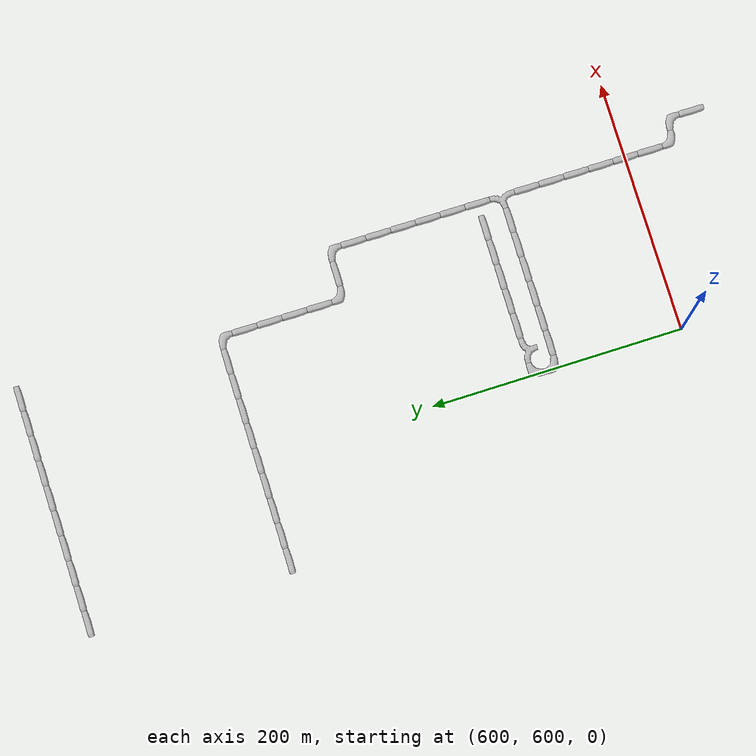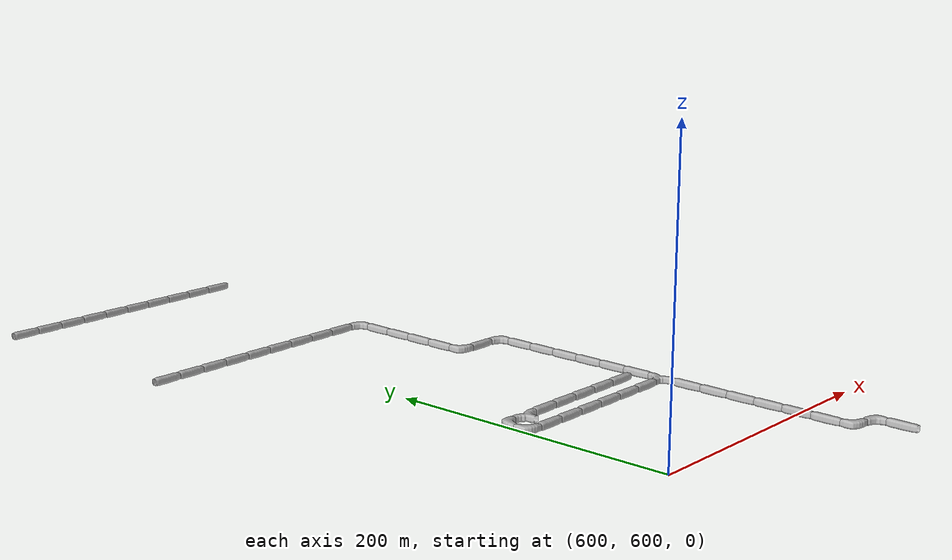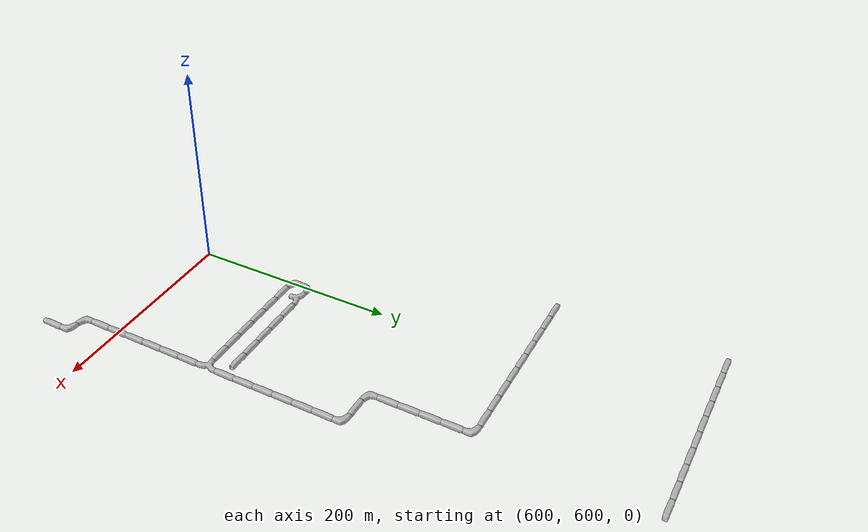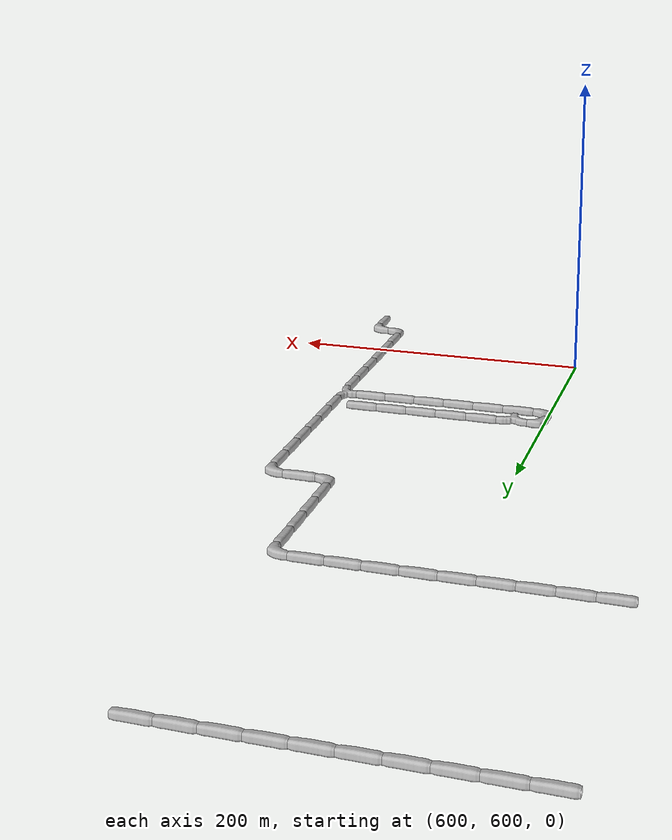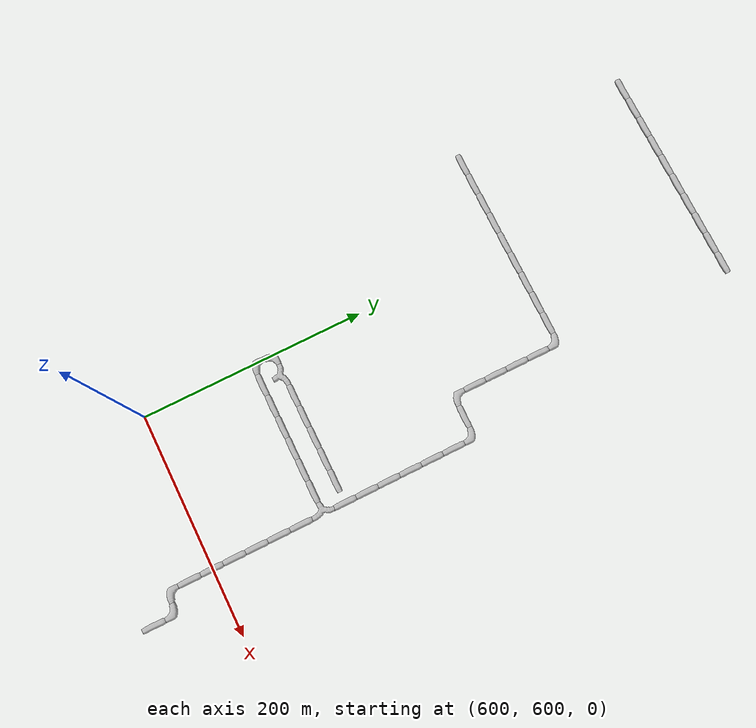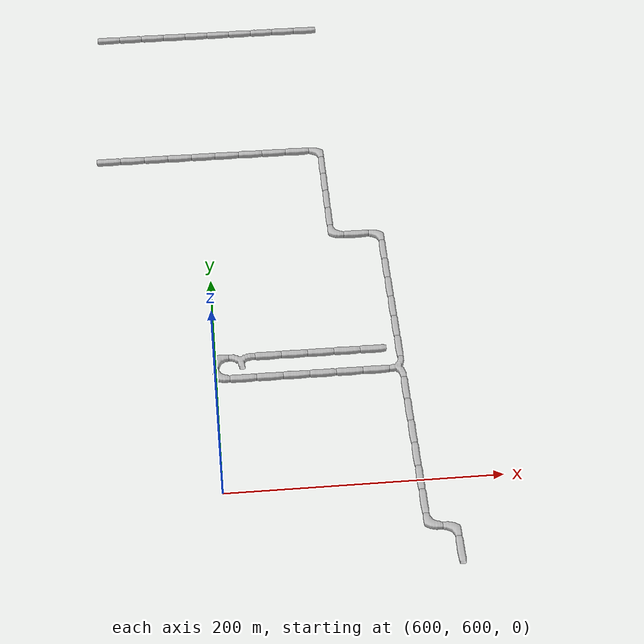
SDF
<sdf version="1.6">
 <world name="cave_32000_2">
  <include>
   <static>true</static>
   <name>cave_38_27</name>
   <pose>760 540 0 0 0 0.0</pose>
   <uri>model://cave_straight_20m</uri>
  </include>
  <include>
   <static>true</static>
   <name>cave_38_28</name>
   <pose>760 560 0 0 0 3.141592653589793</pose>
   <uri>model://cave_L_20m</uri>
  </include>
  <include>
   <static>true</static>
   <name>cave_37_28</name>
   <pose>740 560 0 0 0 0.0</pose>
   <uri>model://cave_L_20m</uri>
  </include>
  <include>
   <static>true</static>
   <name>cave_37_29</name>
   <pose>740 580 0 0 0 0.0</pose>
   <uri>model://cave_straight_20m</uri>
  </include>
  <include>
   <static>true</static>
   <name>cave_37_30</name>
   <pose>740 600 0 0 0 0.0</pose>
   <uri>model://cave_straight_20m</uri>
  </include>
  <include>
   <static>true</static>
   <name>cave_37_31</name>
   <pose>740 620 0 0 0 0.0</pose>
   <uri>model://cave_straight_20m</uri>
  </include>
  <include>
   <static>true</static>
   <name>cave_37_32</name>
   <pose>740 640 0 0 0 0.0</pose>
   <uri>model://cave_straight_20m</uri>
  </include>
  <include>
   <static>true</static>
   <name>cave_37_33</name>
   <pose>740 660 0 0 0 0.0</pose>
   <uri>model://cave_straight_20m</uri>
  </include>
  <include>
   <static>true</static>
   <name>cave_37_34</name>
   <pose>740 680 0 0 0 0.0</pose>
   <uri>model://cave_straight_20m</uri>
  </include>
  <include>
   <static>true</static>
   <name>cave_37_35</name>
   <pose>740 700 0 0 0 1.5707963267948966</pose>
   <uri>model://cave_3way_20m</uri>
  </include>
  <include>
   <static>true</static>
   <name>cave_36_35</name>
   <pose>720 700 0 0 0 1.5707963267948966</pose>
   <uri>model://cave_straight_20m</uri>
  </include>
  <include>
   <static>true</static>
   <name>cave_35_35</name>
   <pose>700 700 0 0 0 1.5707963267948966</pose>
   <uri>model://cave_straight_20m</uri>
  </include>
  <include>
   <static>true</static>
   <name>cave_34_35</name>
   <pose>680 700 0 0 0 1.5707963267948966</pose>
   <uri>model://cave_straight_20m</uri>
  </include>
  <include>
   <static>true</static>
   <name>cave_33_35</name>
   <pose>660 700 0 0 0 1.5707963267948966</pose>
   <uri>model://cave_straight_20m</uri>
  </include>
  <include>
   <static>true</static>
   <name>cave_32_35</name>
   <pose>640 700 0 0 0 1.5707963267948966</pose>
   <uri>model://cave_straight_20m</uri>
  </include>
  <include>
   <static>true</static>
   <name>cave_31_35</name>
   <pose>620 700 0 0 0 1.5707963267948966</pose>
   <uri>model://cave_straight_20m</uri>
  </include>
  <include>
   <static>true</static>
   <name>cave_30_35</name>
   <pose>600 700 0 0 0 0.0</pose>
   <uri>model://cave_L_20m</uri>
  </include>
  <include>
   <static>true</static>
   <name>cave_30_36</name>
   <pose>600 720 0 0 0 -1.5707963267948966</pose>
   <uri>model://cave_L_20m</uri>
  </include>
  <include>
   <static>true</static>
   <name>cave_31_36</name>
   <pose>620 720 0 0 0 3.141592653589793</pose>
   <uri>model://cave_3way_20m</uri>
  </include>
  <include>
   <static>true</static>
   <name>cave_32_36</name>
   <pose>640 720 0 0 0 1.5707963267948966</pose>
   <uri>model://cave_straight_20m</uri>
  </include>
  <include>
   <static>true</static>
   <name>cave_33_36</name>
   <pose>660 720 0 0 0 1.5707963267948966</pose>
   <uri>model://cave_straight_20m</uri>
  </include>
  <include>
   <static>true</static>
   <name>cave_34_36</name>
   <pose>680 720 0 0 0 1.5707963267948966</pose>
   <uri>model://cave_straight_20m</uri>
  </include>
  <include>
   <static>true</static>
   <name>cave_35_36</name>
   <pose>700 720 0 0 0 1.5707963267948966</pose>
   <uri>model://cave_straight_20m</uri>
  </include>
  <include>
   <static>true</static>
   <name>cave_36_36</name>
   <pose>720 720 0 0 0 1.5707963267948966</pose>
   <uri>model://cave_straight_20m</uri>
  </include>
  <include>
   <static>true</static>
   <name>cave_37_36</name>
   <pose>740 720 0 0 0 0.0</pose>
   <uri>model://cave_straight_20m</uri>
  </include>
  <include>
   <static>true</static>
   <name>cave_37_37</name>
   <pose>740 740 0 0 0 0.0</pose>
   <uri>model://cave_straight_20m</uri>
  </include>
  <include>
   <static>true</static>
   <name>cave_37_38</name>
   <pose>740 760 0 0 0 0.0</pose>
   <uri>model://cave_straight_20m</uri>
  </include>
  <include>
   <static>true</static>
   <name>cave_37_39</name>
   <pose>740 780 0 0 0 0.0</pose>
   <uri>model://cave_straight_20m</uri>
  </include>
  <include>
   <static>true</static>
   <name>cave_37_40</name>
   <pose>740 800 0 0 0 0.0</pose>
   <uri>model://cave_straight_20m</uri>
  </include>
  <include>
   <static>true</static>
   <name>cave_37_41</name>
   <pose>740 820 0 0 0 0.0</pose>
   <uri>model://cave_straight_20m</uri>
  </include>
  <include>
   <static>true</static>
   <name>cave_37_42</name>
   <pose>740 840 0 0 0 3.141592653589793</pose>
   <uri>model://cave_L_20m</uri>
  </include>
  <include>
   <static>true</static>
   <name>cave_36_42</name>
   <pose>720 840 0 0 0 1.5707963267948966</pose>
   <uri>model://cave_straight_20m</uri>
  </include>
  <include>
   <static>true</static>
   <name>cave_35_42</name>
   <pose>700 840 0 0 0 0.0</pose>
   <uri>model://cave_L_20m</uri>
  </include>
  <include>
   <static>true</static>
   <name>cave_35_43</name>
   <pose>700 860 0 0 0 0.0</pose>
   <uri>model://cave_straight_20m</uri>
  </include>
  <include>
   <static>true</static>
   <name>cave_35_44</name>
   <pose>700 880 0 0 0 0.0</pose>
   <uri>model://cave_straight_20m</uri>
  </include>
  <include>
   <static>true</static>
   <name>cave_35_45</name>
   <pose>700 900 0 0 0 0.0</pose>
   <uri>model://cave_straight_20m</uri>
  </include>
  <include>
   <static>true</static>
   <name>cave_35_46</name>
   <pose>700 920 0 0 0 0.0</pose>
   <uri>model://cave_straight_20m</uri>
  </include>
  <include>
   <static>true</static>
   <name>cave_35_47</name>
   <pose>700 940 0 0 0 3.141592653589793</pose>
   <uri>model://cave_L_20m</uri>
  </include>
  <include>
   <static>true</static>
   <name>cave_34_47</name>
   <pose>680 940 0 0 0 1.5707963267948966</pose>
   <uri>model://cave_straight_20m</uri>
  </include>
  <include>
   <static>true</static>
   <name>cave_33_47</name>
   <pose>660 940 0 0 0 1.5707963267948966</pose>
   <uri>model://cave_straight_20m</uri>
  </include>
  <include>
   <static>true</static>
   <name>cave_32_47</name>
   <pose>640 940 0 0 0 1.5707963267948966</pose>
   <uri>model://cave_straight_20m</uri>
  </include>
  <include>
   <static>true</static>
   <name>cave_31_47</name>
   <pose>620 940 0 0 0 1.5707963267948966</pose>
   <uri>model://cave_straight_20m</uri>
  </include>
  <include>
   <static>true</static>
   <name>cave_30_47</name>
   <pose>600 940 0 0 0 1.5707963267948966</pose>
   <uri>model://cave_straight_20m</uri>
  </include>
  <include>
   <static>true</static>
   <name>cave_29_47</name>
   <pose>580 940 0 0 0 1.5707963267948966</pose>
   <uri>model://cave_straight_20m</uri>
  </include>
  <include>
   <static>true</static>
   <name>cave_28_47</name>
   <pose>560 940 0 0 0 1.5707963267948966</pose>
   <uri>model://cave_straight_20m</uri>
  </include>
  <include>
   <static>true</static>
   <name>cave_27_47</name>
   <pose>540 940 0 0 0 1.5707963267948966</pose>
   <uri>model://cave_straight_20m</uri>
  </include>
  <include>
   <static>true</static>
   <name>cave_26_47</name>
   <pose>520 940 0 0 0 1.5707963267948966</pose>
   <uri>model://cave_straight_20m</uri>
  </include>
  <include>
   <static>true</static>
   <name>cave_26_55</name>
   <pose>520 1100 0 0 0 1.5707963267948966</pose>
   <uri>model://cave_straight_20m</uri>
  </include>
  <include>
   <static>true</static>
   <name>cave_27_55</name>
   <pose>540 1100 0 0 0 1.5707963267948966</pose>
   <uri>model://cave_straight_20m</uri>
  </include>
  <include>
   <static>true</static>
   <name>cave_28_55</name>
   <pose>560 1100 0 0 0 1.5707963267948966</pose>
   <uri>model://cave_straight_20m</uri>
  </include>
  <include>
   <static>true</static>
   <name>cave_29_55</name>
   <pose>580 1100 0 0 0 1.5707963267948966</pose>
   <uri>model://cave_straight_20m</uri>
  </include>
  <include>
   <static>true</static>
   <name>cave_30_55</name>
   <pose>600 1100 0 0 0 1.5707963267948966</pose>
   <uri>model://cave_straight_20m</uri>
  </include>
  <include>
   <static>true</static>
   <name>cave_31_55</name>
   <pose>620 1100 0 0 0 1.5707963267948966</pose>
   <uri>model://cave_straight_20m</uri>
  </include>
  <include>
   <static>true</static>
   <name>cave_32_55</name>
   <pose>640 1100 0 0 0 1.5707963267948966</pose>
   <uri>model://cave_straight_20m</uri>
  </include>
  <include>
   <static>true</static>
   <name>cave_33_55</name>
   <pose>660 1100 0 0 0 1.5707963267948966</pose>
   <uri>model://cave_straight_20m</uri>
  </include>
  <include>
   <static>true</static>
   <name>cave_34_55</name>
   <pose>680 1100 0 0 0 1.5707963267948966</pose>
   <uri>model://cave_straight_20m</uri>
  </include>
  <include>
   <static>true</static>
   <name>cave_35_55</name>
   <pose>700 1100 0 0 0 1.5707963267948966</pose>
   <uri>model://cave_straight_20m</uri>
  </include>
 </world>
</sdf>
